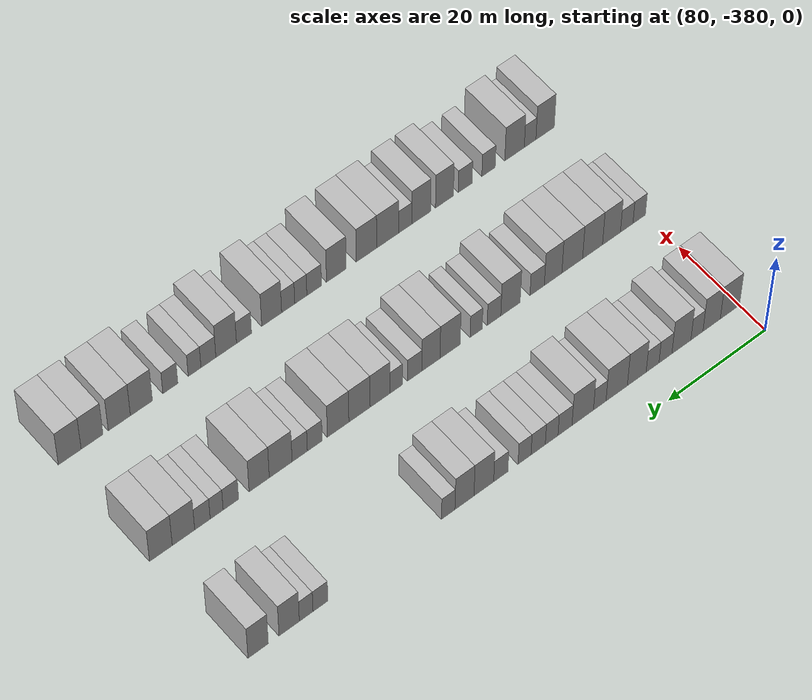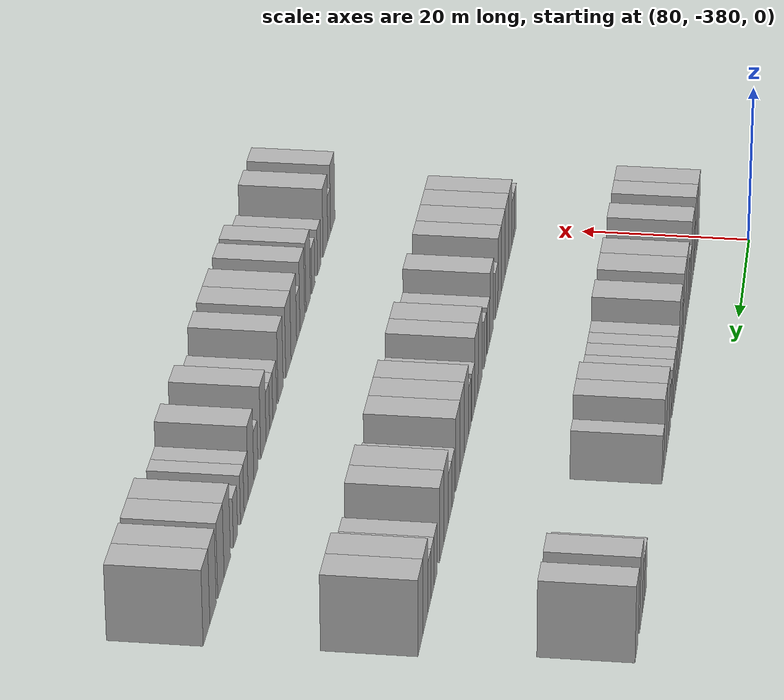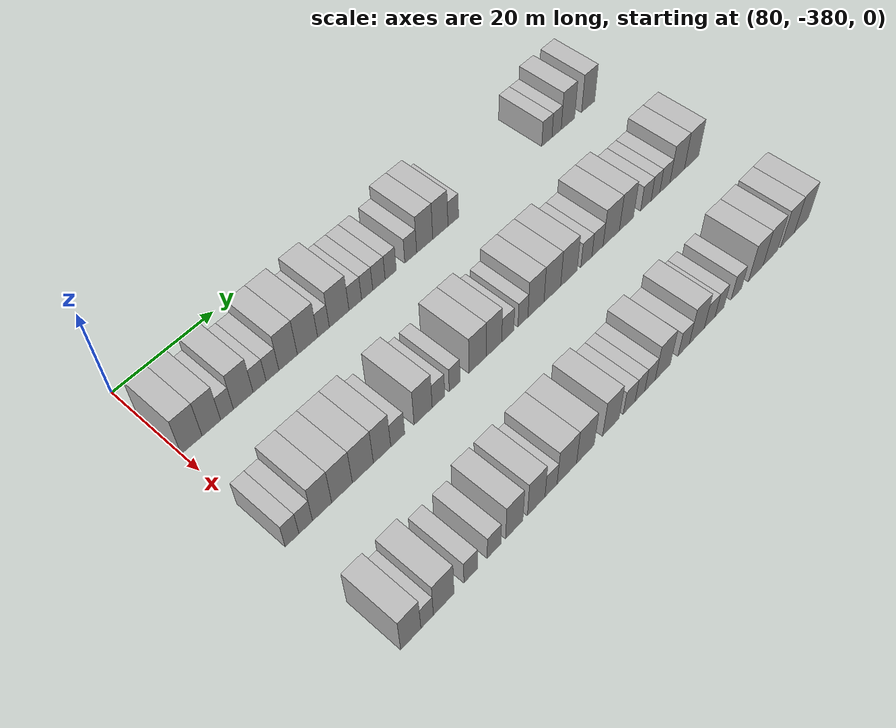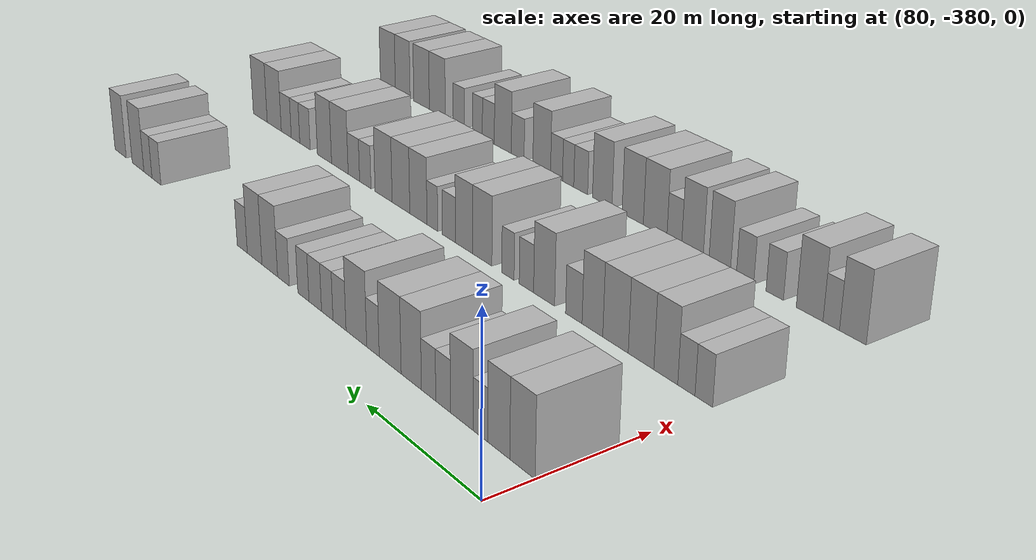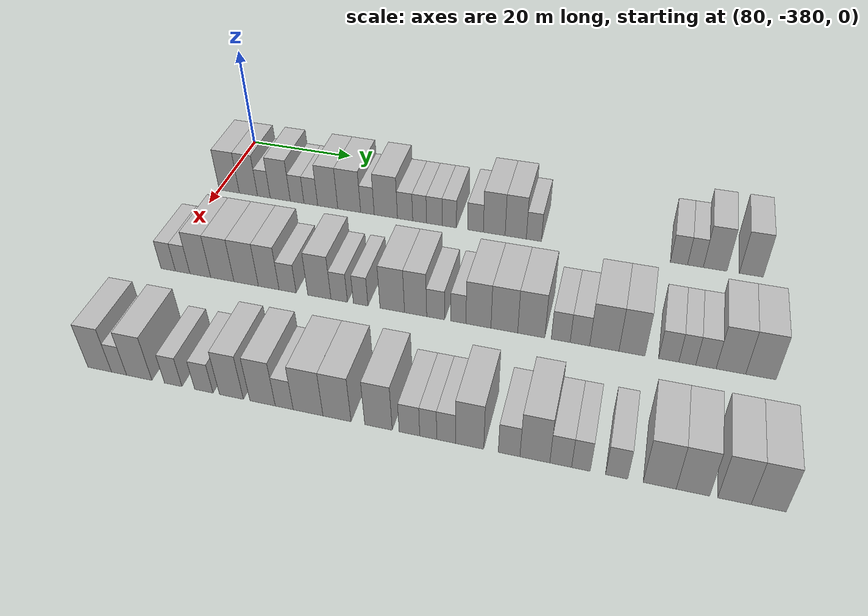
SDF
<sdf version="1.6">
 <world name="default">
  <model name="building_578">
   <static>1</static>
   <pose>91.0000 -378.0032 0 0.000000 0.000000 0.000000</pose>
   <link name="link">
    <pose>0 0 4.50 0 0 0</pose>
    <collision name="collision"><geometry><box><size>10.0000 3.9937 9.0000</size></box></geometry></collision>
    <visual name="visual">
     <cast_shadows>0</cast_shadows>
     <geometry><box><size>10.0000 3.9937 9.0000</size></box></geometry>
     <material>
      <script>
       <uri>model://HANNAS_wall/materials/scripts</uri>
       <uri>model://HANNAS_wall/materials/textures</uri>
       <name>vrc/HANNAS_wall</name>
      </script>
     </material>
    </visual>
   </link>
  </model>
  <model name="building_579">
   <static>1</static>
   <pose>91.0000 -374.2033 0 0.000000 0.000000 0.000000</pose>
   <link name="link">
    <pose>0 0 4.50 0 0 0</pose>
    <collision name="collision"><geometry><box><size>10.0000 3.6061 9.0000</size></box></geometry></collision>
    <visual name="visual">
     <cast_shadows>0</cast_shadows>
     <geometry><box><size>10.0000 3.6061 9.0000</size></box></geometry>
     <material>
      <script>
       <uri>model://HANNAS_wall/materials/scripts</uri>
       <uri>model://HANNAS_wall/materials/textures</uri>
       <name>vrc/HANNAS_wall</name>
      </script>
     </material>
    </visual>
   </link>
  </model>
  <model name="building_580">
   <static>1</static>
   <pose>91.0000 -371.1541 0 0.000000 0.000000 0.000000</pose>
   <link name="link">
    <pose>0 0 3.00 0 0 0</pose>
    <collision name="collision"><geometry><box><size>10.0000 2.4924 6.0000</size></box></geometry></collision>
    <visual name="visual">
     <cast_shadows>0</cast_shadows>
     <geometry><box><size>10.0000 2.4924 6.0000</size></box></geometry>
     <material>
      <script>
       <uri>model://HANNAS_wall/materials/scripts</uri>
       <uri>model://HANNAS_wall/materials/textures</uri>
       <name>vrc/HANNAS_wall</name>
      </script>
     </material>
    </visual>
   </link>
  </model>
  <model name="building_581">
   <static>1</static>
   <pose>91.0000 -367.9466 0 0.000000 0.000000 0.000000</pose>
   <link name="link">
    <pose>0 0 4.50 0 0 0</pose>
    <collision name="collision"><geometry><box><size>10.0000 3.9227 9.0000</size></box></geometry></collision>
    <visual name="visual">
     <cast_shadows>0</cast_shadows>
     <geometry><box><size>10.0000 3.9227 9.0000</size></box></geometry>
     <material>
      <script>
       <uri>model://HANNAS_wall/materials/scripts</uri>
       <uri>model://HANNAS_wall/materials/textures</uri>
       <name>vrc/HANNAS_wall</name>
      </script>
     </material>
    </visual>
   </link>
  </model>
  <model name="building_582">
   <static>1</static>
   <pose>91.0000 -364.6633 0 0.000000 0.000000 0.000000</pose>
   <link name="link">
    <pose>0 0 3.00 0 0 0</pose>
    <collision name="collision"><geometry><box><size>10.0000 2.6439 6.0000</size></box></geometry></collision>
    <visual name="visual">
     <cast_shadows>0</cast_shadows>
     <geometry><box><size>10.0000 2.6439 6.0000</size></box></geometry>
     <material>
      <script>
       <uri>model://HANNAS_wall/materials/scripts</uri>
       <uri>model://HANNAS_wall/materials/textures</uri>
       <name>vrc/HANNAS_wall</name>
      </script>
     </material>
    </visual>
   </link>
  </model>
  <model name="building_583">
   <static>1</static>
   <pose>91.0000 -362.0234 0 0.000000 0.000000 0.000000</pose>
   <link name="link">
    <pose>0 0 3.00 0 0 0</pose>
    <collision name="collision"><geometry><box><size>10.0000 2.6358 6.0000</size></box></geometry></collision>
    <visual name="visual">
     <cast_shadows>0</cast_shadows>
     <geometry><box><size>10.0000 2.6358 6.0000</size></box></geometry>
     <material>
      <script>
       <uri>model://HANNAS_wall/materials/scripts</uri>
       <uri>model://HANNAS_wall/materials/textures</uri>
       <name>vrc/HANNAS_wall</name>
      </script>
     </material>
    </visual>
   </link>
  </model>
  <model name="building_584">
   <static>1</static>
   <pose>91.0000 -358.7859 0 0.000000 0.000000 0.000000</pose>
   <link name="link">
    <pose>0 0 4.50 0 0 0</pose>
    <collision name="collision"><geometry><box><size>10.0000 3.8392 9.0000</size></box></geometry></collision>
    <visual name="visual">
     <cast_shadows>0</cast_shadows>
     <geometry><box><size>10.0000 3.8392 9.0000</size></box></geometry>
     <material>
      <script>
       <uri>model://HANNAS_wall/materials/scripts</uri>
       <uri>model://HANNAS_wall/materials/textures</uri>
       <name>vrc/HANNAS_wall</name>
      </script>
     </material>
    </visual>
   </link>
  </model>
  <model name="building_585">
   <static>1</static>
   <pose>91.0000 -354.7014 0 0.000000 0.000000 0.000000</pose>
   <link name="link">
    <pose>0 0 4.50 0 0 0</pose>
    <collision name="collision"><geometry><box><size>10.0000 4.3298 9.0000</size></box></geometry></collision>
    <visual name="visual">
     <cast_shadows>0</cast_shadows>
     <geometry><box><size>10.0000 4.3298 9.0000</size></box></geometry>
     <material>
      <script>
       <uri>model://HANNAS_wall/materials/scripts</uri>
       <uri>model://HANNAS_wall/materials/textures</uri>
       <name>vrc/HANNAS_wall</name>
      </script>
     </material>
    </visual>
   </link>
  </model>
  <model name="building_586">
   <static>1</static>
   <pose>91.0000 -351.2682 0 0.000000 0.000000 0.000000</pose>
   <link name="link">
    <pose>0 0 3.00 0 0 0</pose>
    <collision name="collision"><geometry><box><size>10.0000 2.5366 6.0000</size></box></geometry></collision>
    <visual name="visual">
     <cast_shadows>0</cast_shadows>
     <geometry><box><size>10.0000 2.5366 6.0000</size></box></geometry>
     <material>
      <script>
       <uri>model://HANNAS_wall/materials/scripts</uri>
       <uri>model://HANNAS_wall/materials/textures</uri>
       <name>vrc/HANNAS_wall</name>
      </script>
     </material>
    </visual>
   </link>
  </model>
  <model name="building_587">
   <static>1</static>
   <pose>91.0000 -347.8347 0 0.000000 0.000000 0.000000</pose>
   <link name="link">
    <pose>0 0 4.50 0 0 0</pose>
    <collision name="collision"><geometry><box><size>10.0000 4.3305 9.0000</size></box></geometry></collision>
    <visual name="visual">
     <cast_shadows>0</cast_shadows>
     <geometry><box><size>10.0000 4.3305 9.0000</size></box></geometry>
     <material>
      <script>
       <uri>model://HANNAS_wall/materials/scripts</uri>
       <uri>model://HANNAS_wall/materials/textures</uri>
       <name>vrc/HANNAS_wall</name>
      </script>
     </material>
    </visual>
   </link>
  </model>
  <model name="building_588">
   <static>1</static>
   <pose>91.0000 -344.2658 0 0.000000 0.000000 0.000000</pose>
   <link name="link">
    <pose>0 0 3.00 0 0 0</pose>
    <collision name="collision"><geometry><box><size>10.0000 2.8073 6.0000</size></box></geometry></collision>
    <visual name="visual">
     <cast_shadows>0</cast_shadows>
     <geometry><box><size>10.0000 2.8073 6.0000</size></box></geometry>
     <material>
      <script>
       <uri>model://HANNAS_wall/materials/scripts</uri>
       <uri>model://HANNAS_wall/materials/textures</uri>
       <name>vrc/HANNAS_wall</name>
      </script>
     </material>
    </visual>
   </link>
  </model>
  <model name="building_589">
   <static>1</static>
   <pose>91.0000 -341.5930 0 0.000000 0.000000 0.000000</pose>
   <link name="link">
    <pose>0 0 3.00 0 0 0</pose>
    <collision name="collision"><geometry><box><size>10.0000 2.5384 6.0000</size></box></geometry></collision>
    <visual name="visual">
     <cast_shadows>0</cast_shadows>
     <geometry><box><size>10.0000 2.5384 6.0000</size></box></geometry>
     <material>
      <script>
       <uri>model://HANNAS_wall/materials/scripts</uri>
       <uri>model://HANNAS_wall/materials/textures</uri>
       <name>vrc/HANNAS_wall</name>
      </script>
     </material>
    </visual>
   </link>
  </model>
  <model name="building_590">
   <static>1</static>
   <pose>91.0000 -338.9049 0 0.000000 0.000000 0.000000</pose>
   <link name="link">
    <pose>0 0 3.00 0 0 0</pose>
    <collision name="collision"><geometry><box><size>10.0000 2.8377 6.0000</size></box></geometry></collision>
    <visual name="visual">
     <cast_shadows>0</cast_shadows>
     <geometry><box><size>10.0000 2.8377 6.0000</size></box></geometry>
     <material>
      <script>
       <uri>model://HANNAS_wall/materials/scripts</uri>
       <uri>model://HANNAS_wall/materials/textures</uri>
       <name>vrc/HANNAS_wall</name>
      </script>
     </material>
    </visual>
   </link>
  </model>
  <model name="building_591">
   <static>1</static>
   <pose>91.0000 -336.1953 0 0.000000 0.000000 0.000000</pose>
   <link name="link">
    <pose>0 0 3.00 0 0 0</pose>
    <collision name="collision"><geometry><box><size>10.0000 2.5815 6.0000</size></box></geometry></collision>
    <visual name="visual">
     <cast_shadows>0</cast_shadows>
     <geometry><box><size>10.0000 2.5815 6.0000</size></box></geometry>
     <material>
      <script>
       <uri>model://HANNAS_wall/materials/scripts</uri>
       <uri>model://HANNAS_wall/materials/textures</uri>
       <name>vrc/HANNAS_wall</name>
      </script>
     </material>
    </visual>
   </link>
  </model>
  <model name="building_592">
   <static>1</static>
   <pose>91.0000 -331.4969 0 0.000000 0.000000 0.000000</pose>
   <link name="link">
    <pose>0 0 3.00 0 0 0</pose>
    <collision name="collision"><geometry><box><size>10.0000 2.8153 6.0000</size></box></geometry></collision>
    <visual name="visual">
     <cast_shadows>0</cast_shadows>
     <geometry><box><size>10.0000 2.8153 6.0000</size></box></geometry>
     <material>
      <script>
       <uri>model://HANNAS_wall/materials/scripts</uri>
       <uri>model://HANNAS_wall/materials/textures</uri>
       <name>vrc/HANNAS_wall</name>
      </script>
     </material>
    </visual>
   </link>
  </model>
  <model name="building_593">
   <static>1</static>
   <pose>91.0000 -328.1573 0 0.000000 0.000000 0.000000</pose>
   <link name="link">
    <pose>0 0 4.50 0 0 0</pose>
    <collision name="collision"><geometry><box><size>10.0000 3.8640 9.0000</size></box></geometry></collision>
    <visual name="visual">
     <cast_shadows>0</cast_shadows>
     <geometry><box><size>10.0000 3.8640 9.0000</size></box></geometry>
     <material>
      <script>
       <uri>model://HANNAS_wall/materials/scripts</uri>
       <uri>model://HANNAS_wall/materials/textures</uri>
       <name>vrc/HANNAS_wall</name>
      </script>
     </material>
    </visual>
   </link>
  </model>
  <model name="building_594">
   <static>1</static>
   <pose>91.0000 -324.3619 0 0.000000 0.000000 0.000000</pose>
   <link name="link">
    <pose>0 0 4.50 0 0 0</pose>
    <collision name="collision"><geometry><box><size>10.0000 3.7266 9.0000</size></box></geometry></collision>
    <visual name="visual">
     <cast_shadows>0</cast_shadows>
     <geometry><box><size>10.0000 3.7266 9.0000</size></box></geometry>
     <material>
      <script>
       <uri>model://HANNAS_wall/materials/scripts</uri>
       <uri>model://HANNAS_wall/materials/textures</uri>
       <name>vrc/HANNAS_wall</name>
      </script>
     </material>
    </visual>
   </link>
  </model>
  <model name="building_595">
   <static>1</static>
   <pose>91.0000 -321.1814 0 0.000000 0.000000 0.000000</pose>
   <link name="link">
    <pose>0 0 3.00 0 0 0</pose>
    <collision name="collision"><geometry><box><size>10.0000 2.6344 6.0000</size></box></geometry></collision>
    <visual name="visual">
     <cast_shadows>0</cast_shadows>
     <geometry><box><size>10.0000 2.6344 6.0000</size></box></geometry>
     <material>
      <script>
       <uri>model://HANNAS_wall/materials/scripts</uri>
       <uri>model://HANNAS_wall/materials/textures</uri>
       <name>vrc/HANNAS_wall</name>
      </script>
     </material>
    </visual>
   </link>
  </model>
  <model name="building_596">
   <static>1</static>
   <pose>91.0000 -296.6319 0 0.000000 0.000000 0.000000</pose>
   <link name="link">
    <pose>0 0 3.00 0 0 0</pose>
    <collision name="collision"><geometry><box><size>10.0000 2.8215 6.0000</size></box></geometry></collision>
    <visual name="visual">
     <cast_shadows>0</cast_shadows>
     <geometry><box><size>10.0000 2.8215 6.0000</size></box></geometry>
     <material>
      <script>
       <uri>model://HANNAS_wall/materials/scripts</uri>
       <uri>model://HANNAS_wall/materials/textures</uri>
       <name>vrc/HANNAS_wall</name>
      </script>
     </material>
    </visual>
   </link>
  </model>
  <model name="building_597">
   <static>1</static>
   <pose>91.0000 -293.9358 0 0.000000 0.000000 0.000000</pose>
   <link name="link">
    <pose>0 0 3.00 0 0 0</pose>
    <collision name="collision"><geometry><box><size>10.0000 2.5708 6.0000</size></box></geometry></collision>
    <visual name="visual">
     <cast_shadows>0</cast_shadows>
     <geometry><box><size>10.0000 2.5708 6.0000</size></box></geometry>
     <material>
      <script>
       <uri>model://HANNAS_wall/materials/scripts</uri>
       <uri>model://HANNAS_wall/materials/textures</uri>
       <name>vrc/HANNAS_wall</name>
      </script>
     </material>
    </visual>
   </link>
  </model>
  <model name="building_598">
   <static>1</static>
   <pose>91.0000 -290.7422 0 0.000000 0.000000 0.000000</pose>
   <link name="link">
    <pose>0 0 4.50 0 0 0</pose>
    <collision name="collision"><geometry><box><size>10.0000 3.8164 9.0000</size></box></geometry></collision>
    <visual name="visual">
     <cast_shadows>0</cast_shadows>
     <geometry><box><size>10.0000 3.8164 9.0000</size></box></geometry>
     <material>
      <script>
       <uri>model://HANNAS_wall/materials/scripts</uri>
       <uri>model://HANNAS_wall/materials/textures</uri>
       <name>vrc/HANNAS_wall</name>
      </script>
     </material>
    </visual>
   </link>
  </model>
  <model name="building_599">
   <static>1</static>
   <pose>91.0000 -284.9358 0 0.000000 0.000000 0.000000</pose>
   <link name="link">
    <pose>0 0 4.50 0 0 0</pose>
    <collision name="collision"><geometry><box><size>10.0000 3.7965 9.0000</size></box></geometry></collision>
    <visual name="visual">
     <cast_shadows>0</cast_shadows>
     <geometry><box><size>10.0000 3.7965 9.0000</size></box></geometry>
     <material>
      <script>
       <uri>model://HANNAS_wall/materials/scripts</uri>
       <uri>model://HANNAS_wall/materials/textures</uri>
       <name>vrc/HANNAS_wall</name>
      </script>
     </material>
    </visual>
   </link>
  </model>
  <model name="building_767">
   <static>1</static>
   <pose>113.0000 -378.6928 0 0.000000 0.000000 0.000000</pose>
   <link name="link">
    <pose>0 0 3.00 0 0 0</pose>
    <collision name="collision"><geometry><box><size>10.0000 2.6143 6.0000</size></box></geometry></collision>
    <visual name="visual">
     <cast_shadows>0</cast_shadows>
     <geometry><box><size>10.0000 2.6143 6.0000</size></box></geometry>
     <material>
      <script>
       <uri>model://HANNAS_wall/materials/scripts</uri>
       <uri>model://HANNAS_wall/materials/textures</uri>
       <name>vrc/HANNAS_wall</name>
      </script>
     </material>
    </visual>
   </link>
  </model>
  <model name="building_768">
   <static>1</static>
   <pose>113.0000 -376.0782 0 0.000000 0.000000 0.000000</pose>
   <link name="link">
    <pose>0 0 3.00 0 0 0</pose>
    <collision name="collision"><geometry><box><size>10.0000 2.6149 6.0000</size></box></geometry></collision>
    <visual name="visual">
     <cast_shadows>0</cast_shadows>
     <geometry><box><size>10.0000 2.6149 6.0000</size></box></geometry>
     <material>
      <script>
       <uri>model://HANNAS_wall/materials/scripts</uri>
       <uri>model://HANNAS_wall/materials/textures</uri>
       <name>vrc/HANNAS_wall</name>
      </script>
     </material>
    </visual>
   </link>
  </model>
  <model name="building_769">
   <static>1</static>
   <pose>113.0000 -372.9037 0 0.000000 0.000000 0.000000</pose>
   <link name="link">
    <pose>0 0 4.50 0 0 0</pose>
    <collision name="collision"><geometry><box><size>10.0000 3.7342 9.0000</size></box></geometry></collision>
    <visual name="visual">
     <cast_shadows>0</cast_shadows>
     <geometry><box><size>10.0000 3.7342 9.0000</size></box></geometry>
     <material>
      <script>
       <uri>model://HANNAS_wall/materials/scripts</uri>
       <uri>model://HANNAS_wall/materials/textures</uri>
       <name>vrc/HANNAS_wall</name>
      </script>
     </material>
    </visual>
   </link>
  </model>
  <model name="building_770">
   <static>1</static>
   <pose>113.0000 -368.9711 0 0.000000 0.000000 0.000000</pose>
   <link name="link">
    <pose>0 0 4.50 0 0 0</pose>
    <collision name="collision"><geometry><box><size>10.0000 4.1309 9.0000</size></box></geometry></collision>
    <visual name="visual">
     <cast_shadows>0</cast_shadows>
     <geometry><box><size>10.0000 4.1309 9.0000</size></box></geometry>
     <material>
      <script>
       <uri>model://HANNAS_wall/materials/scripts</uri>
       <uri>model://HANNAS_wall/materials/textures</uri>
       <name>vrc/HANNAS_wall</name>
      </script>
     </material>
    </visual>
   </link>
  </model>
  <model name="building_771">
   <static>1</static>
   <pose>113.0000 -364.7655 0 0.000000 0.000000 0.000000</pose>
   <link name="link">
    <pose>0 0 4.50 0 0 0</pose>
    <collision name="collision"><geometry><box><size>10.0000 4.2804 9.0000</size></box></geometry></collision>
    <visual name="visual">
     <cast_shadows>0</cast_shadows>
     <geometry><box><size>10.0000 4.2804 9.0000</size></box></geometry>
     <material>
      <script>
       <uri>model://HANNAS_wall/materials/scripts</uri>
       <uri>model://HANNAS_wall/materials/textures</uri>
       <name>vrc/HANNAS_wall</name>
      </script>
     </material>
    </visual>
   </link>
  </model>
  <model name="building_772">
   <static>1</static>
   <pose>113.0000 -360.8237 0 0.000000 0.000000 0.000000</pose>
   <link name="link">
    <pose>0 0 4.50 0 0 0</pose>
    <collision name="collision"><geometry><box><size>10.0000 3.6032 9.0000</size></box></geometry></collision>
    <visual name="visual">
     <cast_shadows>0</cast_shadows>
     <geometry><box><size>10.0000 3.6032 9.0000</size></box></geometry>
     <material>
      <script>
       <uri>model://HANNAS_wall/materials/scripts</uri>
       <uri>model://HANNAS_wall/materials/textures</uri>
       <name>vrc/HANNAS_wall</name>
      </script>
     </material>
    </visual>
   </link>
  </model>
  <model name="building_773">
   <static>1</static>
   <pose>113.0000 -357.5502 0 0.000000 0.000000 0.000000</pose>
   <link name="link">
    <pose>0 0 3.00 0 0 0</pose>
    <collision name="collision"><geometry><box><size>10.0000 2.9437 6.0000</size></box></geometry></collision>
    <visual name="visual">
     <cast_shadows>0</cast_shadows>
     <geometry><box><size>10.0000 2.9437 6.0000</size></box></geometry>
     <material>
      <script>
       <uri>model://HANNAS_wall/materials/scripts</uri>
       <uri>model://HANNAS_wall/materials/textures</uri>
       <name>vrc/HANNAS_wall</name>
      </script>
     </material>
    </visual>
   </link>
  </model>
  <model name="building_774">
   <static>1</static>
   <pose>113.0000 -352.1125 0 0.000000 0.000000 0.000000</pose>
   <link name="link">
    <pose>0 0 4.50 0 0 0</pose>
    <collision name="collision"><geometry><box><size>10.0000 3.9318 9.0000</size></box></geometry></collision>
    <visual name="visual">
     <cast_shadows>0</cast_shadows>
     <geometry><box><size>10.0000 3.9318 9.0000</size></box></geometry>
     <material>
      <script>
       <uri>model://HANNAS_wall/materials/scripts</uri>
       <uri>model://HANNAS_wall/materials/textures</uri>
       <name>vrc/HANNAS_wall</name>
      </script>
     </material>
    </visual>
   </link>
  </model>
  <model name="building_775">
   <static>1</static>
   <pose>113.0000 -348.7596 0 0.000000 0.000000 0.000000</pose>
   <link name="link">
    <pose>0 0 3.00 0 0 0</pose>
    <collision name="collision"><geometry><box><size>10.0000 2.7741 6.0000</size></box></geometry></collision>
    <visual name="visual">
     <cast_shadows>0</cast_shadows>
     <geometry><box><size>10.0000 2.7741 6.0000</size></box></geometry>
     <material>
      <script>
       <uri>model://HANNAS_wall/materials/scripts</uri>
       <uri>model://HANNAS_wall/materials/textures</uri>
       <name>vrc/HANNAS_wall</name>
      </script>
     </material>
    </visual>
   </link>
  </model>
  <model name="building_776">
   <static>1</static>
   <pose>113.0000 -345.1580 0 0.000000 0.000000 0.000000</pose>
   <link name="link">
    <pose>0 0 3.00 0 0 0</pose>
    <collision name="collision"><geometry><box><size>10.0000 2.4292 6.0000</size></box></geometry></collision>
    <visual name="visual">
     <cast_shadows>0</cast_shadows>
     <geometry><box><size>10.0000 2.4292 6.0000</size></box></geometry>
     <material>
      <script>
       <uri>model://HANNAS_wall/materials/scripts</uri>
       <uri>model://HANNAS_wall/materials/textures</uri>
       <name>vrc/HANNAS_wall</name>
      </script>
     </material>
    </visual>
   </link>
  </model>
  <model name="building_777">
   <static>1</static>
   <pose>113.0000 -339.9273 0 0.000000 0.000000 0.000000</pose>
   <link name="link">
    <pose>0 0 4.50 0 0 0</pose>
    <collision name="collision"><geometry><box><size>10.0000 4.0321 9.0000</size></box></geometry></collision>
    <visual name="visual">
     <cast_shadows>0</cast_shadows>
     <geometry><box><size>10.0000 4.0321 9.0000</size></box></geometry>
     <material>
      <script>
       <uri>model://HANNAS_wall/materials/scripts</uri>
       <uri>model://HANNAS_wall/materials/textures</uri>
       <name>vrc/HANNAS_wall</name>
      </script>
     </material>
    </visual>
   </link>
  </model>
  <model name="building_778">
   <static>1</static>
   <pose>113.0000 -336.1070 0 0.000000 0.000000 0.000000</pose>
   <link name="link">
    <pose>0 0 4.50 0 0 0</pose>
    <collision name="collision"><geometry><box><size>10.0000 3.6087 9.0000</size></box></geometry></collision>
    <visual name="visual">
     <cast_shadows>0</cast_shadows>
     <geometry><box><size>10.0000 3.6087 9.0000</size></box></geometry>
     <material>
      <script>
       <uri>model://HANNAS_wall/materials/scripts</uri>
       <uri>model://HANNAS_wall/materials/textures</uri>
       <name>vrc/HANNAS_wall</name>
      </script>
     </material>
    </visual>
   </link>
  </model>
  <model name="building_779">
   <static>1</static>
   <pose>113.0000 -332.8609 0 0.000000 0.000000 0.000000</pose>
   <link name="link">
    <pose>0 0 3.00 0 0 0</pose>
    <collision name="collision"><geometry><box><size>10.0000 2.8834 6.0000</size></box></geometry></collision>
    <visual name="visual">
     <cast_shadows>0</cast_shadows>
     <geometry><box><size>10.0000 2.8834 6.0000</size></box></geometry>
     <material>
      <script>
       <uri>model://HANNAS_wall/materials/scripts</uri>
       <uri>model://HANNAS_wall/materials/textures</uri>
       <name>vrc/HANNAS_wall</name>
      </script>
     </material>
    </visual>
   </link>
  </model>
  <model name="building_780">
   <static>1</static>
   <pose>113.0000 -329.2151 0 0.000000 0.000000 0.000000</pose>
   <link name="link">
    <pose>0 0 3.00 0 0 0</pose>
    <collision name="collision"><geometry><box><size>10.0000 2.4083 6.0000</size></box></geometry></collision>
    <visual name="visual">
     <cast_shadows>0</cast_shadows>
     <geometry><box><size>10.0000 2.4083 6.0000</size></box></geometry>
     <material>
      <script>
       <uri>model://HANNAS_wall/materials/scripts</uri>
       <uri>model://HANNAS_wall/materials/textures</uri>
       <name>vrc/HANNAS_wall</name>
      </script>
     </material>
    </visual>
   </link>
  </model>
  <model name="building_781">
   <static>1</static>
   <pose>113.0000 -326.0297 0 0.000000 0.000000 0.000000</pose>
   <link name="link">
    <pose>0 0 4.50 0 0 0</pose>
    <collision name="collision"><geometry><box><size>10.0000 3.9625 9.0000</size></box></geometry></collision>
    <visual name="visual">
     <cast_shadows>0</cast_shadows>
     <geometry><box><size>10.0000 3.9625 9.0000</size></box></geometry>
     <material>
      <script>
       <uri>model://HANNAS_wall/materials/scripts</uri>
       <uri>model://HANNAS_wall/materials/textures</uri>
       <name>vrc/HANNAS_wall</name>
      </script>
     </material>
    </visual>
   </link>
  </model>
  <model name="building_782">
   <static>1</static>
   <pose>113.0000 -321.9584 0 0.000000 0.000000 0.000000</pose>
   <link name="link">
    <pose>0 0 4.50 0 0 0</pose>
    <collision name="collision"><geometry><box><size>10.0000 4.1803 9.0000</size></box></geometry></collision>
    <visual name="visual">
     <cast_shadows>0</cast_shadows>
     <geometry><box><size>10.0000 4.1803 9.0000</size></box></geometry>
     <material>
      <script>
       <uri>model://HANNAS_wall/materials/scripts</uri>
       <uri>model://HANNAS_wall/materials/textures</uri>
       <name>vrc/HANNAS_wall</name>
      </script>
     </material>
    </visual>
   </link>
  </model>
  <model name="building_783">
   <static>1</static>
   <pose>113.0000 -317.7702 0 0.000000 0.000000 0.000000</pose>
   <link name="link">
    <pose>0 0 4.50 0 0 0</pose>
    <collision name="collision"><geometry><box><size>10.0000 4.1959 9.0000</size></box></geometry></collision>
    <visual name="visual">
     <cast_shadows>0</cast_shadows>
     <geometry><box><size>10.0000 4.1959 9.0000</size></box></geometry>
     <material>
      <script>
       <uri>model://HANNAS_wall/materials/scripts</uri>
       <uri>model://HANNAS_wall/materials/textures</uri>
       <name>vrc/HANNAS_wall</name>
      </script>
     </material>
    </visual>
   </link>
  </model>
  <model name="building_784">
   <static>1</static>
   <pose>113.0000 -313.2281 0 0.000000 0.000000 0.000000</pose>
   <link name="link">
    <pose>0 0 3.00 0 0 0</pose>
    <collision name="collision"><geometry><box><size>10.0000 2.8883 6.0000</size></box></geometry></collision>
    <visual name="visual">
     <cast_shadows>0</cast_shadows>
     <geometry><box><size>10.0000 2.8883 6.0000</size></box></geometry>
     <material>
      <script>
       <uri>model://HANNAS_wall/materials/scripts</uri>
       <uri>model://HANNAS_wall/materials/textures</uri>
       <name>vrc/HANNAS_wall</name>
      </script>
     </material>
    </visual>
   </link>
  </model>
  <model name="building_785">
   <static>1</static>
   <pose>113.0000 -310.3100 0 0.000000 0.000000 0.000000</pose>
   <link name="link">
    <pose>0 0 3.00 0 0 0</pose>
    <collision name="collision"><geometry><box><size>10.0000 2.9481 6.0000</size></box></geometry></collision>
    <visual name="visual">
     <cast_shadows>0</cast_shadows>
     <geometry><box><size>10.0000 2.9481 6.0000</size></box></geometry>
     <material>
      <script>
       <uri>model://HANNAS_wall/materials/scripts</uri>
       <uri>model://HANNAS_wall/materials/textures</uri>
       <name>vrc/HANNAS_wall</name>
      </script>
     </material>
    </visual>
   </link>
  </model>
  <model name="building_786">
   <static>1</static>
   <pose>113.0000 -306.6367 0 0.000000 0.000000 0.000000</pose>
   <link name="link">
    <pose>0 0 4.50 0 0 0</pose>
    <collision name="collision"><geometry><box><size>10.0000 4.3984 9.0000</size></box></geometry></collision>
    <visual name="visual">
     <cast_shadows>0</cast_shadows>
     <geometry><box><size>10.0000 4.3984 9.0000</size></box></geometry>
     <material>
      <script>
       <uri>model://HANNAS_wall/materials/scripts</uri>
       <uri>model://HANNAS_wall/materials/textures</uri>
       <name>vrc/HANNAS_wall</name>
      </script>
     </material>
    </visual>
   </link>
  </model>
  <model name="building_787">
   <static>1</static>
   <pose>113.0000 -302.5010 0 0.000000 0.000000 0.000000</pose>
   <link name="link">
    <pose>0 0 4.50 0 0 0</pose>
    <collision name="collision"><geometry><box><size>10.0000 3.8731 9.0000</size></box></geometry></collision>
    <visual name="visual">
     <cast_shadows>0</cast_shadows>
     <geometry><box><size>10.0000 3.8731 9.0000</size></box></geometry>
     <material>
      <script>
       <uri>model://HANNAS_wall/materials/scripts</uri>
       <uri>model://HANNAS_wall/materials/textures</uri>
       <name>vrc/HANNAS_wall</name>
      </script>
     </material>
    </visual>
   </link>
  </model>
  <model name="building_788">
   <static>1</static>
   <pose>113.0000 -297.0921 0 0.000000 0.000000 0.000000</pose>
   <link name="link">
    <pose>0 0 3.00 0 0 0</pose>
    <collision name="collision"><geometry><box><size>10.0000 2.9447 6.0000</size></box></geometry></collision>
    <visual name="visual">
     <cast_shadows>0</cast_shadows>
     <geometry><box><size>10.0000 2.9447 6.0000</size></box></geometry>
     <material>
      <script>
       <uri>model://HANNAS_wall/materials/scripts</uri>
       <uri>model://HANNAS_wall/materials/textures</uri>
       <name>vrc/HANNAS_wall</name>
      </script>
     </material>
    </visual>
   </link>
  </model>
  <model name="building_789">
   <static>1</static>
   <pose>113.0000 -294.3911 0 0.000000 0.000000 0.000000</pose>
   <link name="link">
    <pose>0 0 3.00 0 0 0</pose>
    <collision name="collision"><geometry><box><size>10.0000 2.4573 6.0000</size></box></geometry></collision>
    <visual name="visual">
     <cast_shadows>0</cast_shadows>
     <geometry><box><size>10.0000 2.4573 6.0000</size></box></geometry>
     <material>
      <script>
       <uri>model://HANNAS_wall/materials/scripts</uri>
       <uri>model://HANNAS_wall/materials/textures</uri>
       <name>vrc/HANNAS_wall</name>
      </script>
     </material>
    </visual>
   </link>
  </model>
  <model name="building_790">
   <static>1</static>
   <pose>113.0000 -291.6976 0 0.000000 0.000000 0.000000</pose>
   <link name="link">
    <pose>0 0 3.00 0 0 0</pose>
    <collision name="collision"><geometry><box><size>10.0000 2.9296 6.0000</size></box></geometry></collision>
    <visual name="visual">
     <cast_shadows>0</cast_shadows>
     <geometry><box><size>10.0000 2.9296 6.0000</size></box></geometry>
     <material>
      <script>
       <uri>model://HANNAS_wall/materials/scripts</uri>
       <uri>model://HANNAS_wall/materials/textures</uri>
       <name>vrc/HANNAS_wall</name>
      </script>
     </material>
    </visual>
   </link>
  </model>
  <model name="building_791">
   <static>1</static>
   <pose>113.0000 -288.1213 0 0.000000 0.000000 0.000000</pose>
   <link name="link">
    <pose>0 0 4.50 0 0 0</pose>
    <collision name="collision"><geometry><box><size>10.0000 4.2231 9.0000</size></box></geometry></collision>
    <visual name="visual">
     <cast_shadows>0</cast_shadows>
     <geometry><box><size>10.0000 4.2231 9.0000</size></box></geometry>
     <material>
      <script>
       <uri>model://HANNAS_wall/materials/scripts</uri>
       <uri>model://HANNAS_wall/materials/textures</uri>
       <name>vrc/HANNAS_wall</name>
      </script>
     </material>
    </visual>
   </link>
  </model>
  <model name="building_792">
   <static>1</static>
   <pose>113.0000 -283.8748 0 0.000000 0.000000 0.000000</pose>
   <link name="link">
    <pose>0 0 4.50 0 0 0</pose>
    <collision name="collision"><geometry><box><size>10.0000 4.2698 9.0000</size></box></geometry></collision>
    <visual name="visual">
     <cast_shadows>0</cast_shadows>
     <geometry><box><size>10.0000 4.2698 9.0000</size></box></geometry>
     <material>
      <script>
       <uri>model://HANNAS_wall/materials/scripts</uri>
       <uri>model://HANNAS_wall/materials/textures</uri>
       <name>vrc/HANNAS_wall</name>
      </script>
     </material>
    </visual>
   </link>
  </model>
  <model name="building_954">
   <static>1</static>
   <pose>135.0000 -378.0692 0 0.000000 0.000000 0.000000</pose>
   <link name="link">
    <pose>0 0 4.50 0 0 0</pose>
    <collision name="collision"><geometry><box><size>10.0000 3.8615 9.0000</size></box></geometry></collision>
    <visual name="visual">
     <cast_shadows>0</cast_shadows>
     <geometry><box><size>10.0000 3.8615 9.0000</size></box></geometry>
     <material>
      <script>
       <uri>model://HANNAS_wall/materials/scripts</uri>
       <uri>model://HANNAS_wall/materials/textures</uri>
       <name>vrc/HANNAS_wall</name>
      </script>
     </material>
    </visual>
   </link>
  </model>
  <model name="building_955">
   <static>1</static>
   <pose>135.0000 -374.9191 0 0.000000 0.000000 0.000000</pose>
   <link name="link">
    <pose>0 0 3.00 0 0 0</pose>
    <collision name="collision"><geometry><box><size>10.0000 2.4387 6.0000</size></box></geometry></collision>
    <visual name="visual">
     <cast_shadows>0</cast_shadows>
     <geometry><box><size>10.0000 2.4387 6.0000</size></box></geometry>
     <material>
      <script>
       <uri>model://HANNAS_wall/materials/scripts</uri>
       <uri>model://HANNAS_wall/materials/textures</uri>
       <name>vrc/HANNAS_wall</name>
      </script>
     </material>
    </visual>
   </link>
  </model>
  <model name="building_956">
   <static>1</static>
   <pose>135.0000 -371.6633 0 0.000000 0.000000 0.000000</pose>
   <link name="link">
    <pose>0 0 4.50 0 0 0</pose>
    <collision name="collision"><geometry><box><size>10.0000 4.0728 9.0000</size></box></geometry></collision>
    <visual name="visual">
     <cast_shadows>0</cast_shadows>
     <geometry><box><size>10.0000 4.0728 9.0000</size></box></geometry>
     <material>
      <script>
       <uri>model://HANNAS_wall/materials/scripts</uri>
       <uri>model://HANNAS_wall/materials/textures</uri>
       <name>vrc/HANNAS_wall</name>
      </script>
     </material>
    </visual>
   </link>
  </model>
  <model name="building_957">
   <static>1</static>
   <pose>135.0000 -366.2385 0 0.000000 0.000000 0.000000</pose>
   <link name="link">
    <pose>0 0 3.00 0 0 0</pose>
    <collision name="collision"><geometry><box><size>10.0000 2.7767 6.0000</size></box></geometry></collision>
    <visual name="visual">
     <cast_shadows>0</cast_shadows>
     <geometry><box><size>10.0000 2.7767 6.0000</size></box></geometry>
     <material>
      <script>
       <uri>model://HANNAS_wall/materials/scripts</uri>
       <uri>model://HANNAS_wall/materials/textures</uri>
       <name>vrc/HANNAS_wall</name>
      </script>
     </material>
    </visual>
   </link>
  </model>
  <model name="building_958">
   <static>1</static>
   <pose>135.0000 -361.4134 0 0.000000 0.000000 0.000000</pose>
   <link name="link">
    <pose>0 0 3.00 0 0 0</pose>
    <collision name="collision"><geometry><box><size>10.0000 2.8736 6.0000</size></box></geometry></collision>
    <visual name="visual">
     <cast_shadows>0</cast_shadows>
     <geometry><box><size>10.0000 2.8736 6.0000</size></box></geometry>
     <material>
      <script>
       <uri>model://HANNAS_wall/materials/scripts</uri>
       <uri>model://HANNAS_wall/materials/textures</uri>
       <name>vrc/HANNAS_wall</name>
      </script>
     </material>
    </visual>
   </link>
  </model>
  <model name="building_959">
   <static>1</static>
   <pose>135.0000 -357.1317 0 0.000000 0.000000 0.000000</pose>
   <link name="link">
    <pose>0 0 4.50 0 0 0</pose>
    <collision name="collision"><geometry><box><size>10.0000 3.6897 9.0000</size></box></geometry></collision>
    <visual name="visual">
     <cast_shadows>0</cast_shadows>
     <geometry><box><size>10.0000 3.6897 9.0000</size></box></geometry>
     <material>
      <script>
       <uri>model://HANNAS_wall/materials/scripts</uri>
       <uri>model://HANNAS_wall/materials/textures</uri>
       <name>vrc/HANNAS_wall</name>
      </script>
     </material>
    </visual>
   </link>
  </model>
  <model name="building_960">
   <static>1</static>
   <pose>135.0000 -352.3639 0 0.000000 0.000000 0.000000</pose>
   <link name="link">
    <pose>0 0 4.50 0 0 0</pose>
    <collision name="collision"><geometry><box><size>10.0000 3.8460 9.0000</size></box></geometry></collision>
    <visual name="visual">
     <cast_shadows>0</cast_shadows>
     <geometry><box><size>10.0000 3.8460 9.0000</size></box></geometry>
     <material>
      <script>
       <uri>model://HANNAS_wall/materials/scripts</uri>
       <uri>model://HANNAS_wall/materials/textures</uri>
       <name>vrc/HANNAS_wall</name>
      </script>
     </material>
    </visual>
   </link>
  </model>
  <model name="building_961">
   <static>1</static>
   <pose>135.0000 -349.0916 0 0.000000 0.000000 0.000000</pose>
   <link name="link">
    <pose>0 0 3.00 0 0 0</pose>
    <collision name="collision"><geometry><box><size>10.0000 2.6986 6.0000</size></box></geometry></collision>
    <visual name="visual">
     <cast_shadows>0</cast_shadows>
     <geometry><box><size>10.0000 2.6986 6.0000</size></box></geometry>
     <material>
      <script>
       <uri>model://HANNAS_wall/materials/scripts</uri>
       <uri>model://HANNAS_wall/materials/textures</uri>
       <name>vrc/HANNAS_wall</name>
      </script>
     </material>
    </visual>
   </link>
  </model>
  <model name="building_962">
   <static>1</static>
   <pose>135.0000 -345.5257 0 0.000000 0.000000 0.000000</pose>
   <link name="link">
    <pose>0 0 4.50 0 0 0</pose>
    <collision name="collision"><geometry><box><size>10.0000 4.4332 9.0000</size></box></geometry></collision>
    <visual name="visual">
     <cast_shadows>0</cast_shadows>
     <geometry><box><size>10.0000 4.4332 9.0000</size></box></geometry>
     <material>
      <script>
       <uri>model://HANNAS_wall/materials/scripts</uri>
       <uri>model://HANNAS_wall/materials/textures</uri>
       <name>vrc/HANNAS_wall</name>
      </script>
     </material>
    </visual>
   </link>
  </model>
  <model name="building_963">
   <static>1</static>
   <pose>135.0000 -341.2447 0 0.000000 0.000000 0.000000</pose>
   <link name="link">
    <pose>0 0 4.50 0 0 0</pose>
    <collision name="collision"><geometry><box><size>10.0000 4.1287 9.0000</size></box></geometry></collision>
    <visual name="visual">
     <cast_shadows>0</cast_shadows>
     <geometry><box><size>10.0000 4.1287 9.0000</size></box></geometry>
     <material>
      <script>
       <uri>model://HANNAS_wall/materials/scripts</uri>
       <uri>model://HANNAS_wall/materials/textures</uri>
       <name>vrc/HANNAS_wall</name>
      </script>
     </material>
    </visual>
   </link>
  </model>
  <model name="building_964">
   <static>1</static>
   <pose>135.0000 -335.2029 0 0.000000 0.000000 0.000000</pose>
   <link name="link">
    <pose>0 0 4.50 0 0 0</pose>
    <collision name="collision"><geometry><box><size>10.0000 3.9550 9.0000</size></box></geometry></collision>
    <visual name="visual">
     <cast_shadows>0</cast_shadows>
     <geometry><box><size>10.0000 3.9550 9.0000</size></box></geometry>
     <material>
      <script>
       <uri>model://HANNAS_wall/materials/scripts</uri>
       <uri>model://HANNAS_wall/materials/textures</uri>
       <name>vrc/HANNAS_wall</name>
      </script>
     </material>
    </visual>
   </link>
  </model>
  <model name="building_965">
   <static>1</static>
   <pose>135.0000 -330.7662 0 0.000000 0.000000 0.000000</pose>
   <link name="link">
    <pose>0 0 3.00 0 0 0</pose>
    <collision name="collision"><geometry><box><size>10.0000 2.9184 6.0000</size></box></geometry></collision>
    <visual name="visual">
     <cast_shadows>0</cast_shadows>
     <geometry><box><size>10.0000 2.9184 6.0000</size></box></geometry>
     <material>
      <script>
       <uri>model://HANNAS_wall/materials/scripts</uri>
       <uri>model://HANNAS_wall/materials/textures</uri>
       <name>vrc/HANNAS_wall</name>
      </script>
     </material>
    </visual>
   </link>
  </model>
  <model name="building_966">
   <static>1</static>
   <pose>135.0000 -328.1056 0 0.000000 0.000000 0.000000</pose>
   <link name="link">
    <pose>0 0 3.00 0 0 0</pose>
    <collision name="collision"><geometry><box><size>10.0000 2.4027 6.0000</size></box></geometry></collision>
    <visual name="visual">
     <cast_shadows>0</cast_shadows>
     <geometry><box><size>10.0000 2.4027 6.0000</size></box></geometry>
     <material>
      <script>
       <uri>model://HANNAS_wall/materials/scripts</uri>
       <uri>model://HANNAS_wall/materials/textures</uri>
       <name>vrc/HANNAS_wall</name>
      </script>
     </material>
    </visual>
   </link>
  </model>
  <model name="building_967">
   <static>1</static>
   <pose>135.0000 -325.6028 0 0.000000 0.000000 0.000000</pose>
   <link name="link">
    <pose>0 0 3.00 0 0 0</pose>
    <collision name="collision"><geometry><box><size>10.0000 2.6028 6.0000</size></box></geometry></collision>
    <visual name="visual">
     <cast_shadows>0</cast_shadows>
     <geometry><box><size>10.0000 2.6028 6.0000</size></box></geometry>
     <material>
      <script>
       <uri>model://HANNAS_wall/materials/scripts</uri>
       <uri>model://HANNAS_wall/materials/textures</uri>
       <name>vrc/HANNAS_wall</name>
      </script>
     </material>
    </visual>
   </link>
  </model>
  <model name="building_968">
   <static>1</static>
   <pose>135.0000 -322.3349 0 0.000000 0.000000 0.000000</pose>
   <link name="link">
    <pose>0 0 4.50 0 0 0</pose>
    <collision name="collision"><geometry><box><size>10.0000 3.9331 9.0000</size></box></geometry></collision>
    <visual name="visual">
     <cast_shadows>0</cast_shadows>
     <geometry><box><size>10.0000 3.9331 9.0000</size></box></geometry>
     <material>
      <script>
       <uri>model://HANNAS_wall/materials/scripts</uri>
       <uri>model://HANNAS_wall/materials/textures</uri>
       <name>vrc/HANNAS_wall</name>
      </script>
     </material>
    </visual>
   </link>
  </model>
  <model name="building_969">
   <static>1</static>
   <pose>135.0000 -316.8965 0 0.000000 0.000000 0.000000</pose>
   <link name="link">
    <pose>0 0 3.00 0 0 0</pose>
    <collision name="collision"><geometry><box><size>10.0000 2.9436 6.0000</size></box></geometry></collision>
    <visual name="visual">
     <cast_shadows>0</cast_shadows>
     <geometry><box><size>10.0000 2.9436 6.0000</size></box></geometry>
     <material>
      <script>
       <uri>model://HANNAS_wall/materials/scripts</uri>
       <uri>model://HANNAS_wall/materials/textures</uri>
       <name>vrc/HANNAS_wall</name>
      </script>
     </material>
    </visual>
   </link>
  </model>
  <model name="building_970">
   <static>1</static>
   <pose>135.0000 -313.4100 0 0.000000 0.000000 0.000000</pose>
   <link name="link">
    <pose>0 0 4.50 0 0 0</pose>
    <collision name="collision"><geometry><box><size>10.0000 4.0295 9.0000</size></box></geometry></collision>
    <visual name="visual">
     <cast_shadows>0</cast_shadows>
     <geometry><box><size>10.0000 4.0295 9.0000</size></box></geometry>
     <material>
      <script>
       <uri>model://HANNAS_wall/materials/scripts</uri>
       <uri>model://HANNAS_wall/materials/textures</uri>
       <name>vrc/HANNAS_wall</name>
      </script>
     </material>
    </visual>
   </link>
  </model>
  <model name="building_971">
   <static>1</static>
   <pose>135.0000 -309.9430 0 0.000000 0.000000 0.000000</pose>
   <link name="link">
    <pose>0 0 3.00 0 0 0</pose>
    <collision name="collision"><geometry><box><size>10.0000 2.9046 6.0000</size></box></geometry></collision>
    <visual name="visual">
     <cast_shadows>0</cast_shadows>
     <geometry><box><size>10.0000 2.9046 6.0000</size></box></geometry>
     <material>
      <script>
       <uri>model://HANNAS_wall/materials/scripts</uri>
       <uri>model://HANNAS_wall/materials/textures</uri>
       <name>vrc/HANNAS_wall</name>
      </script>
     </material>
    </visual>
   </link>
  </model>
  <model name="building_972">
   <static>1</static>
   <pose>135.0000 -307.2557 0 0.000000 0.000000 0.000000</pose>
   <link name="link">
    <pose>0 0 3.00 0 0 0</pose>
    <collision name="collision"><geometry><box><size>10.0000 2.4700 6.0000</size></box></geometry></collision>
    <visual name="visual">
     <cast_shadows>0</cast_shadows>
     <geometry><box><size>10.0000 2.4700 6.0000</size></box></geometry>
     <material>
      <script>
       <uri>model://HANNAS_wall/materials/scripts</uri>
       <uri>model://HANNAS_wall/materials/textures</uri>
       <name>vrc/HANNAS_wall</name>
      </script>
     </material>
    </visual>
   </link>
  </model>
  <model name="building_973">
   <static>1</static>
   <pose>135.0000 -302.5708 0 0.000000 0.000000 0.000000</pose>
   <link name="link">
    <pose>0 0 3.00 0 0 0</pose>
    <collision name="collision"><geometry><box><size>10.0000 2.8998 6.0000</size></box></geometry></collision>
    <visual name="visual">
     <cast_shadows>0</cast_shadows>
     <geometry><box><size>10.0000 2.8998 6.0000</size></box></geometry>
     <material>
      <script>
       <uri>model://HANNAS_wall/materials/scripts</uri>
       <uri>model://HANNAS_wall/materials/textures</uri>
       <name>vrc/HANNAS_wall</name>
      </script>
     </material>
    </visual>
   </link>
  </model>
  <model name="building_974">
   <static>1</static>
   <pose>135.0000 -297.0131 0 0.000000 0.000000 0.000000</pose>
   <link name="link">
    <pose>0 0 4.50 0 0 0</pose>
    <collision name="collision"><geometry><box><size>10.0000 4.2157 9.0000</size></box></geometry></collision>
    <visual name="visual">
     <cast_shadows>0</cast_shadows>
     <geometry><box><size>10.0000 4.2157 9.0000</size></box></geometry>
     <material>
      <script>
       <uri>model://HANNAS_wall/materials/scripts</uri>
       <uri>model://HANNAS_wall/materials/textures</uri>
       <name>vrc/HANNAS_wall</name>
      </script>
     </material>
    </visual>
   </link>
  </model>
  <model name="building_975">
   <static>1</static>
   <pose>135.0000 -292.7942 0 0.000000 0.000000 0.000000</pose>
   <link name="link">
    <pose>0 0 4.50 0 0 0</pose>
    <collision name="collision"><geometry><box><size>10.0000 4.2220 9.0000</size></box></geometry></collision>
    <visual name="visual">
     <cast_shadows>0</cast_shadows>
     <geometry><box><size>10.0000 4.2220 9.0000</size></box></geometry>
     <material>
      <script>
       <uri>model://HANNAS_wall/materials/scripts</uri>
       <uri>model://HANNAS_wall/materials/textures</uri>
       <name>vrc/HANNAS_wall</name>
      </script>
     </material>
    </visual>
   </link>
  </model>
  <model name="building_976">
   <static>1</static>
   <pose>135.0000 -287.6142 0 0.000000 0.000000 0.000000</pose>
   <link name="link">
    <pose>0 0 4.50 0 0 0</pose>
    <collision name="collision"><geometry><box><size>10.0000 4.1379 9.0000</size></box></geometry></collision>
    <visual name="visual">
     <cast_shadows>0</cast_shadows>
     <geometry><box><size>10.0000 4.1379 9.0000</size></box></geometry>
     <material>
      <script>
       <uri>model://HANNAS_wall/materials/scripts</uri>
       <uri>model://HANNAS_wall/materials/textures</uri>
       <name>vrc/HANNAS_wall</name>
      </script>
     </material>
    </visual>
   </link>
  </model>
  <model name="building_977">
   <static>1</static>
   <pose>135.0000 -283.3951 0 0.000000 0.000000 0.000000</pose>
   <link name="link">
    <pose>0 0 4.50 0 0 0</pose>
    <collision name="collision"><geometry><box><size>10.0000 4.3003 9.0000</size></box></geometry></collision>
    <visual name="visual">
     <cast_shadows>0</cast_shadows>
     <geometry><box><size>10.0000 4.3003 9.0000</size></box></geometry>
     <material>
      <script>
       <uri>model://HANNAS_wall/materials/scripts</uri>
       <uri>model://HANNAS_wall/materials/textures</uri>
       <name>vrc/HANNAS_wall</name>
      </script>
     </material>
    </visual>
   </link>
  </model>
 </world>
</sdf>
